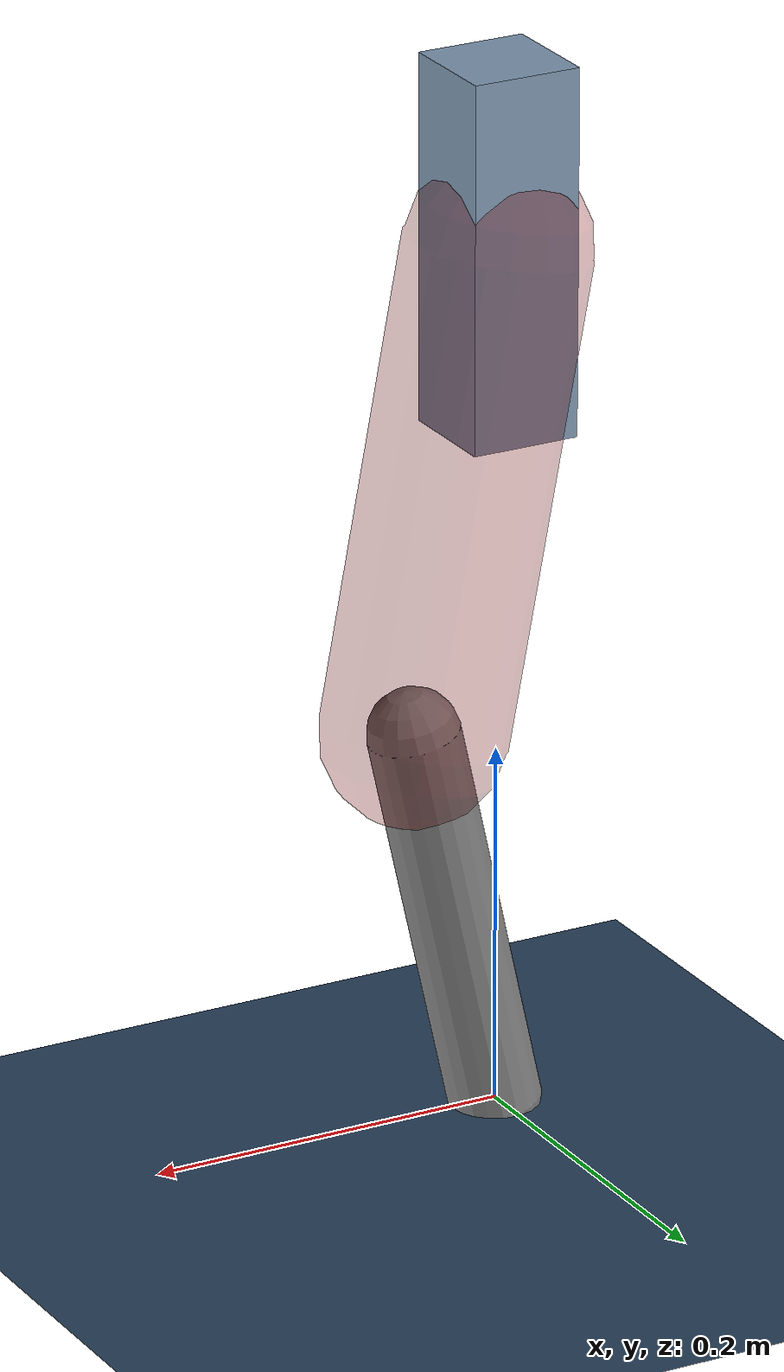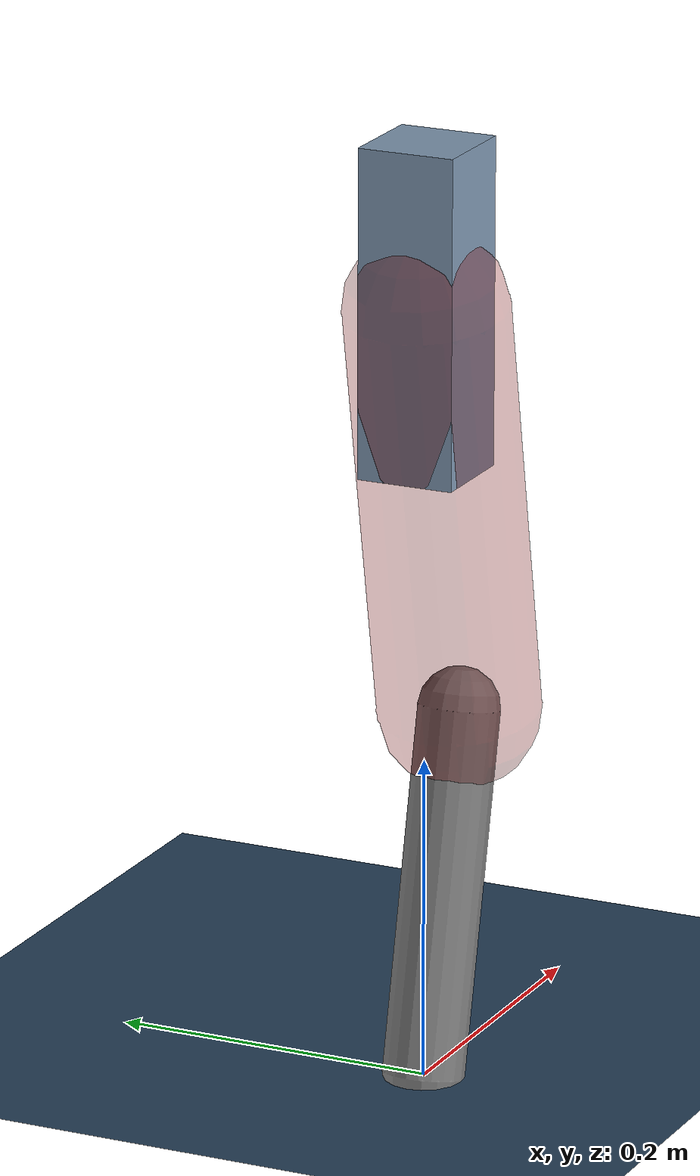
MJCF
<mujoco model="Hopper2D">
	<compiler inertiafromgeom="true" angle="radian" />
	<option timestep="0.001" integrator="implicit" cone="elliptic" solver="Newton" tolerance="1e-10" />

	<default>
		<geom contype="1" conaffinity="1" condim="3" friction="2 0.005 0.0001" solref="0.005 1" />
		<joint limited="true" damping="0.1" />
	</default>

	<asset>
		<texture name="skybox" type="skybox" builtin="gradient" rgb1=".4 .6 .8" rgb2="0 0 0" width="800" height="800" />
		<texture name="grid" type="2d" builtin="checker" rgb1=".1 .2 .3" rgb2=".2 .3 .4" width="300" height="300" mark="edge" markrgb=".2 .3 .4" />
		<material name="ground" texture="grid" texrepeat="1 1" texuniform="true" reflectance="0.1" />
		<material name="leg" rgba="0.5 0.6 0.7 1" />
	</asset>

	<worldbody>

		<geom name="floor" type="plane" size="5 5 0.25" material="ground" />

		<light directional="false" diffuse="0.8 0.8 0.8" specular="0.3 0.3 0.3" pos="0 0 2" dir="0 0 -1" />
		<light mode="targetbodycom" target="base" directional="false" diffuse="0.8 0.8 0.8" specular="0.3 0.3 0.3" pos="0 0 2" dir="0 0 -1" />

		<camera name="fixed" pos="0 -2 1" xyaxes="1 0 0 0 0 1" />
		<camera name="tracking" mode="trackcom" pos="0 -3 1" />

		<body name="root" pos="0 0 0.4788576458811787">
			<joint name="slide_x" type="slide" axis="1 0 0" range="-100 100" />
			<joint name="slide_z" type="slide" axis="0 0 1" range="0 10" />

			<body name="base" pos="0 0 0">
				<geom name="torso" type="box" size="0.03 0.03 0.1" mass="2.8819999999999997" material="leg" />

				<body name="link1" pos="0 0 0" euler="0 1.384772613592471 0">
					<joint type="hinge" axis="0 -1 0" pos="0 0 0" name="hinge1" limited="true" range="-3.14 3.14" stiffness="0" damping="0.1" />
					<geom name="thigh" type="capsule" fromto="0 0 0 0.2649601321938904 0 0" size="0.05" rgba="0.5 0 0 0.3" mass="0.895396343704115" />

					<body name="link2" pos="0.2649601321938904 0 0" euler="0 0.4066828754535887 0">
						<joint type="hinge" axis="0 -1 0" pos="0 0 0" name="hinge2" limited="true" range="-3.14 3.14" stiffness="0" damping="0.1" />
						<geom name="shank" type="capsule" fromto="0 0 0 0.22389751368728827 0 0" size="0.025" mass="0.4209180109498306" />

					</body>
				</body>
			</body>
		</body>
	</worldbody>

	<actuator>
		<motor name="torque1" joint="hinge1" ctrlrange="-123.3964946426667 123.3964946426667" ctrllimited="true" gear="1" />
		<motor name="torque2" joint="hinge2" ctrlrange="-110.10612478931394 110.10612478931394" ctrllimited="true" gear="1" />
	</actuator>
</mujoco>
